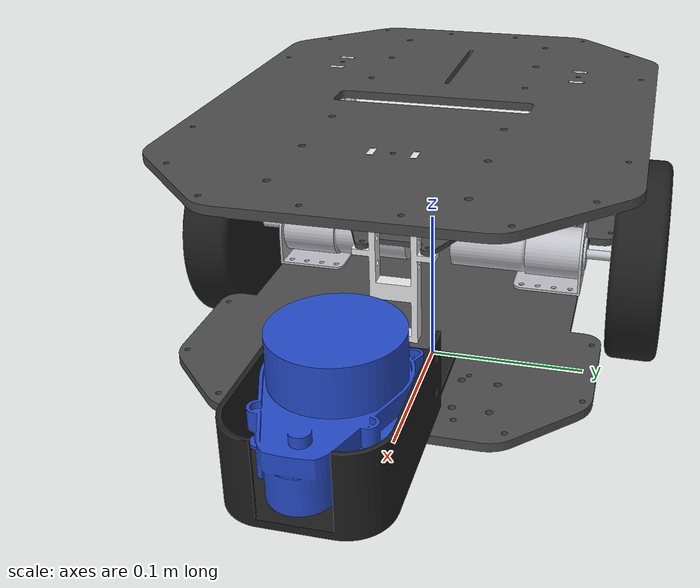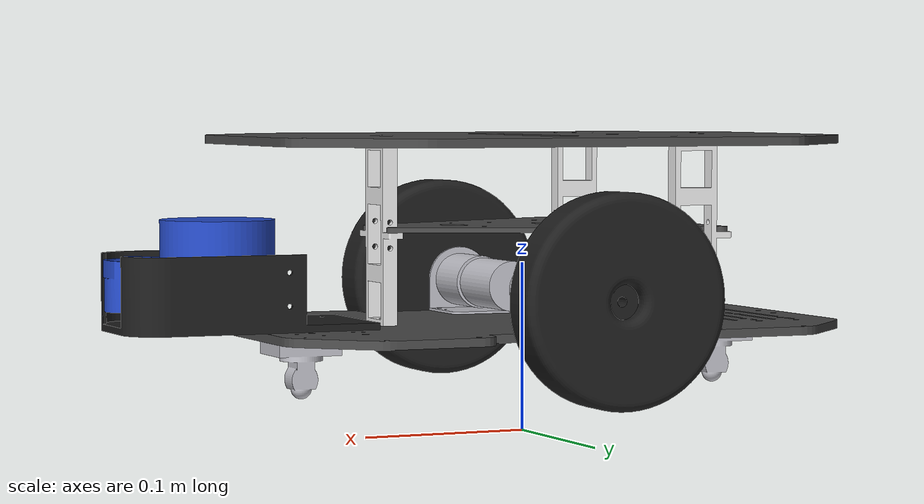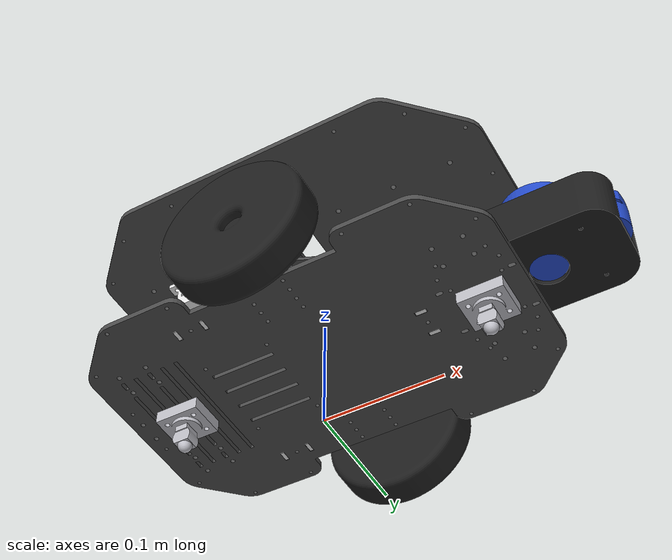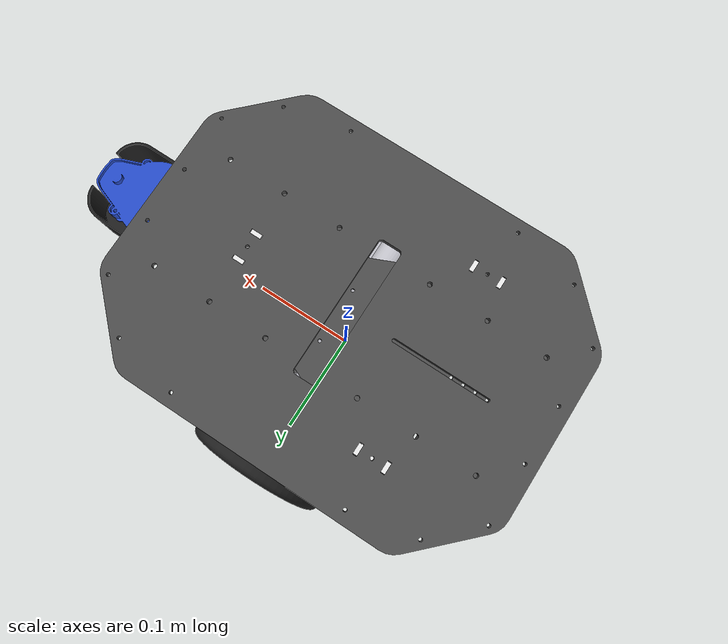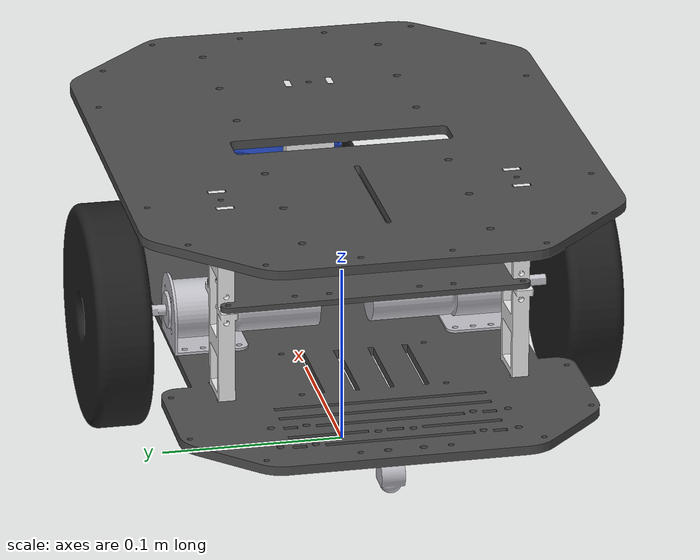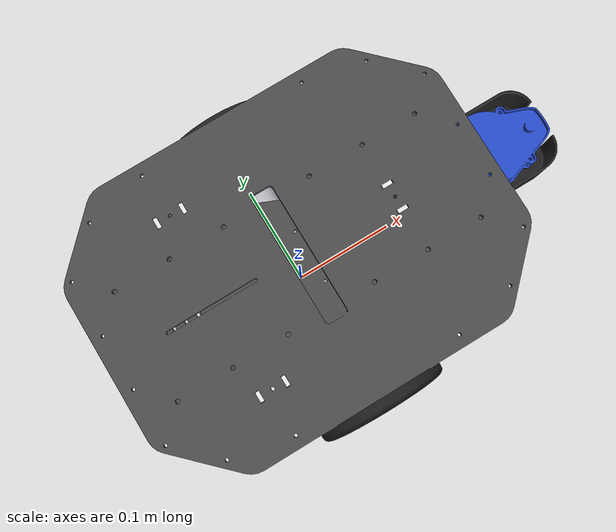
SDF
<sdf version='1.7'>
  <model name='lapras_urdf'>
    <link name='base_link'>
      <inertial>
        <pose>0.033155 2e-06 0.113248 0 -0 0</pose>
        <mass>0.1</mass>
        <inertia>
          <ixx>0.0543009</ixx>
          <ixy>5.06848e-06</ixy>
          <ixz>0.00532297</ixz>
          <iyy>0.136365</iyy>
          <iyz>2.43154e-07</iyz>
          <izz>0.148266</izz>
        </inertia>
      </inertial>
      <collision name='base_link_collision'>
        <pose>0 0 0 0 -0 0</pose>
        <geometry>
          <mesh>
            <scale>0.001 0.001 0.001</scale>
            <uri>model://models/lapras/meshes/base_link.stl</uri>
          </mesh>
        </geometry>
        <surface>
          <contact>
            <ode/>
          </contact>
          <friction>
            <ode>
              <mu>0.2</mu>
              <mu2>0.2</mu2>
            </ode>
          </friction>
        </surface>
      </collision>
      <collision name='base_link_fixed_joint_lump__MotorBracket_v1_1_collision_1'>
        <pose>0 0 0 0 -0 0</pose>
        <geometry>
          <mesh>
            <scale>0.001 0.001 0.001</scale>
            <uri>model://models/lapras/meshes/MotorBracket_v1_1.stl</uri>
          </mesh>
        </geometry>
        <surface>
          <contact>
            <ode/>
          </contact>
          <friction>
            <ode>
              <mu>0.2</mu>
              <mu2>0.2</mu2>
            </ode>
          </friction>
        </surface>
      </collision>
      <collision name='base_link_fixed_joint_lump__Motor_v1__1__1_collision_2'>
        <pose>0 0 0 0 -0 0</pose>
        <geometry>
          <mesh>
            <scale>0.001 0.001 0.001</scale>
            <uri>model://models/lapras/meshes/Motor_v1__1__1.stl</uri>
          </mesh>
        </geometry>
        <surface>
          <contact>
            <ode/>
          </contact>
          <friction>
            <ode>
              <mu>0.2</mu>
              <mu2>0.2</mu2>
            </ode>
          </friction>
        </surface>
      </collision>
      <collision name='base_link_fixed_joint_lump__MotorBracket_v1__1__1_collision_3'>
        <pose>0 0 0 0 -0 0</pose>
        <geometry>
          <mesh>
            <scale>0.001 0.001 0.001</scale>
            <uri>model://models/lapras/meshes/MotorBracket_v1__1__1.stl</uri>
          </mesh>
        </geometry>
        <surface>
          <contact>
            <ode/>
          </contact>
          <friction>
            <ode>
              <mu>0.2</mu>
              <mu2>0.2</mu2>
            </ode>
          </friction>
        </surface>
      </collision>
      <collision name='base_link_fixed_joint_lump__Motor_v1_1_collision_4'>
        <pose>-0 0 0 0 -0 0</pose>
        <geometry>
          <mesh>
            <scale>0.001 0.001 0.001</scale>
            <uri>model://models/lapras/meshes/Motor_v1_1.stl</uri>
          </mesh>
        </geometry>
        <surface>
          <contact>
            <ode/>
          </contact>
          <friction>
            <ode>
              <mu>0.2</mu>
              <mu2>0.2</mu2>
            </ode>
          </friction>
        </surface>
      </collision>
      <collision name='base_link_fixed_joint_lump__ydlidar_base_v5_1_collision_5'>
        <pose>0 0 0 0 -0 0</pose>
        <geometry>
          <mesh>
            <scale>0.001 0.001 0.001</scale>
            <uri>model://models/lapras/meshes/ydlidar_base_v5_1.stl</uri>
          </mesh>
        </geometry>
        <surface>
          <contact>
            <ode/>
          </contact>
          <friction>
            <ode>
              <mu>0.2</mu>
              <mu2>0.2</mu2>
            </ode>
          </friction>
        </surface>
      </collision>
      <collision name='base_link_fixed_joint_lump__ydlidar_x4_v1_1_collision_6'>
        <pose>-0 0 0 0 -0 0</pose>
        <geometry>
          <mesh>
            <scale>0.001 0.001 0.001</scale>
            <uri>model://models/lapras/meshes/ydlidar_x4_v1_1.stl</uri>
          </mesh>
        </geometry>
        <surface>
          <contact>
            <ode/>
          </contact>
          <friction>
            <ode>
              <mu>0.2</mu>
              <mu2>0.2</mu2>
            </ode>
          </friction>
        </surface>
      </collision>
      <collision name='base_link_fixed_joint_lump__Barbell_v4__2__1_collision_7'>
        <pose>0 0 0 0 -0 0</pose>
        <geometry>
          <mesh>
            <scale>0.001 0.001 0.001</scale>
            <uri>model://models/lapras/meshes/Barbell_v4__2__1.stl</uri>
          </mesh>
        </geometry>
        <surface>
          <contact>
            <ode/>
          </contact>
          <friction>
            <ode>
              <mu>0.2</mu>
              <mu2>0.2</mu2>
            </ode>
          </friction>
        </surface>
      </collision>
      <collision name='base_link_fixed_joint_lump__Barbell_v4__1__1_collision_8'>
        <pose>0 0 0 0 -0 0</pose>
        <geometry>
          <mesh>
            <scale>0.001 0.001 0.001</scale>
            <uri>model://models/lapras/meshes/Barbell_v4__1__1.stl</uri>
          </mesh>
        </geometry>
        <surface>
          <contact>
            <ode/>
          </contact>
          <friction>
            <ode>
              <mu>0.2</mu>
              <mu2>0.2</mu2>
            </ode>
          </friction>
        </surface>
      </collision>
      <collision name='base_link_fixed_joint_lump__Barbell_v4_1_collision_9'>
        <pose>0 0 0 0 -0 0</pose>
        <geometry>
          <mesh>
            <scale>0.001 0.001 0.001</scale>
            <uri>model://models/lapras/meshes/Barbell_v4_1.stl</uri>
          </mesh>
        </geometry>
        <surface>
          <contact>
            <ode/>
          </contact>
          <friction>
            <ode>
              <mu>0.2</mu>
              <mu2>0.2</mu2>
            </ode>
          </friction>
        </surface>
      </collision>
      <collision name='base_link_fixed_joint_lump__mid_base_v8_1_collision_10'>
        <pose>0 0 0 0 -0 0</pose>
        <geometry>
          <mesh>
            <scale>0.001 0.001 0.001</scale>
            <uri>model://models/lapras/meshes/mid_base_v8_1.stl</uri>
          </mesh>
        </geometry>
        <surface>
          <contact>
            <ode/>
          </contact>
          <friction>
            <ode>
              <mu>0.2</mu>
              <mu2>0.2</mu2>
            </ode>
          </friction>
        </surface>
      </collision>
      <collision name='base_link_fixed_joint_lump__topper_base_v7_1_collision_11'>
        <pose>0 0 0 0 -0 0</pose>
        <geometry>
          <mesh>
            <scale>0.001 0.001 0.001</scale>
            <uri>model://models/lapras/meshes/topper_base_v7_1.stl</uri>
          </mesh>
        </geometry>
        <surface>
          <contact>
            <ode/>
          </contact>
          <friction>
            <ode>
              <mu>0.2</mu>
              <mu2>0.2</mu2>
            </ode>
          </friction>
        </surface>
      </collision>
      <collision name='base_link_fixed_joint_lump__caster_v2_1_collision_12'>
        <pose>0 0 0 0 -0 0</pose>
        <geometry>
          <mesh>
            <scale>0.001 0.001 0.001</scale>
            <uri>model://models/lapras/meshes/caster_urdf_v4_1.stl</uri>
          </mesh>
        </geometry>
        <surface>
          <contact>
            <ode/>
          </contact>
          <friction>
            <ode>
              <mu>0.0001</mu>
              <mu2>0.0001</mu2>
            </ode>
          </friction>
        </surface>
      </collision>
      <collision name='base_link_fixed_joint_lump__caster_v2__2__1_collision_13'>
        <pose>0 0 0 0 -0 0</pose>
        <geometry>
          <mesh>
            <scale>0.001 0.001 0.001</scale>
            <uri>model://models/lapras/meshes/caster_urdf_v4__1__1.stl</uri>
          </mesh>
        </geometry>
        <surface>
          <contact>
            <ode/>
          </contact>
          <friction>
            <ode>
              <mu>0.0001</mu>
              <mu2>0.0001</mu2>
            </ode>
          </friction>
        </surface>
      </collision>
      <visual name='base_link_visual'>
        <pose>0 0 0 0 -0 0</pose>
        <geometry>
          <mesh>
            <scale>0.001 0.001 0.001</scale>
            <uri>lapras/meshes/base_link.stl</uri>
          </mesh>
        </geometry>
        <material>
          <script>
            <name>Gazebo/DarkGrey</name>
            <uri>file://media/materials/scripts/gazebo.material</uri>
          </script>
        </material>
      </visual>
      <visual name='base_link_fixed_joint_lump__MotorBracket_v1_1_visual_1'>
        <pose>0 0 0 0 -0 0</pose>
        <geometry>
          <mesh>
            <scale>0.001 0.001 0.001</scale>
            <uri>model://models/lapras/meshes/MotorBracket_v1_1.stl</uri>
          </mesh>
        </geometry>
        <material>
          <script>
            <name>Gazebo/Silver</name>
            <uri>file://media/materials/scripts/gazebo.material</uri>
          </script>
        </material>
      </visual>
      <visual name='base_link_fixed_joint_lump__Motor_v1__1__1_visual_2'>
        <pose>0 0 0 0 -0 0</pose>
        <geometry>
          <mesh>
            <scale>0.001 0.001 0.001</scale>
            <uri>model://models/lapras/meshes/Motor_v1__1__1.stl</uri>
          </mesh>
        </geometry>
        <material>
          <script>
            <name>Gazebo/Silver</name>
            <uri>file://media/materials/scripts/gazebo.material</uri>
          </script>
        </material>
      </visual>
      <visual name='base_link_fixed_joint_lump__MotorBracket_v1__1__1_visual_3'>
        <pose>0 0 0 0 -0 0</pose>
        <geometry>
          <mesh>
            <scale>0.001 0.001 0.001</scale>
            <uri>model://models/lapras/meshes/MotorBracket_v1__1__1.stl</uri>
          </mesh>
        </geometry>
        <material>
          <script>
            <name>Gazebo/Silver</name>
            <uri>file://media/materials/scripts/gazebo.material</uri>
          </script>
        </material>
      </visual>
      <visual name='base_link_fixed_joint_lump__Motor_v1_1_visual_4'>
        <pose>-0 0 0 0 -0 0</pose>
        <geometry>
          <mesh>
            <scale>0.001 0.001 0.001</scale>
            <uri>model://models/lapras/meshes/Motor_v1_1.stl</uri>
          </mesh>
        </geometry>
        <material>
          <script>
            <name>Gazebo/Silver</name>
            <uri>file://media/materials/scripts/gazebo.material</uri>
          </script>
        </material>
      </visual>
      <visual name='base_link_fixed_joint_lump__ydlidar_base_v5_1_visual_5'>
        <pose>0 0 0 0 -0 0</pose>
        <geometry>
          <mesh>
            <scale>0.001 0.001 0.001</scale>
            <uri>model://models/lapras/meshes/ydlidar_base_v5_1.stl</uri>
          </mesh>
        </geometry>
        <material>
          <script>
            <name>Gazebo/Black</name>
            <uri>file://media/materials/scripts/gazebo.material</uri>
          </script>
        </material>
      </visual>

      <sensor name="laser" type="ray">
	   <pose> 0.19 0.0 0.12 0.0 0.0 0.0</pose>
           <ray>
             <scan>
               <horizontal>
                 <resolution>0.5</resolution>
                 <min_angle>-2.3038</min_angle>
                 <max_angle>2.3038</max_angle>
               </horizontal>
             </scan>
             <range>
               <min>0.08</min>
               <max>8</max>
               <resolution>0.05</resolution>
             </range>
           </ray>
           <always_on>1</always_on>
           <update_rate>10</update_rate>
           <visualize>false</visualize>

           <plugin name='laser' filename='libgazebo_ros_ray_sensor.so'>
             <ros>
               <namespace>/</namespace>
               <remapping>~/out:=/scan/raw</remapping>
             </ros>
             <output_type>sensor_msgs/LaserScan</output_type>
             <frame_name>laser_frame</frame_name>
           </plugin>
	 </sensor>

      <visual name='base_link_fixed_joint_lump__ydlidar_x4_v1_1_visual_6'>
        <pose>-0 0 0 0 -0 0</pose>
        <geometry>
          <mesh>
            <scale>0.001 0.001 0.001</scale>
            <uri>model://models/lapras/meshes/ydlidar_x4_v1_1.stl</uri>
          </mesh>
        </geometry>
        <material>
          <script>
            <name>Gazebo/Blue</name>
            <uri>file://media/materials/scripts/gazebo.material</uri>
          </script>
        </material>
      </visual>

      <sensor name="lapras_gps" type="gps">
      <always_on>true</always_on>
      <update_rate>10.0</update_rate>
      <gps>
        <position_sensing>
          <horizontal>
            <noise type="gaussian">
              <mean>0.0</mean>
              <stddev>1e-2</stddev>
            </noise>
          </horizontal>
          <vertical>
            <noise type="gaussian">
              <mean>0.0</mean>
              <stddev>1</stddev>
            </noise>
          </vertical>
        </position_sensing>
      </gps>
      <plugin name="mobile_robot_gps" filename="libgazebo_ros_gps_sensor.so">
        <ros>
          <remapping>~/out:=gps/fix</remapping>
        </ros>
      </plugin>

    </sensor>

       <sensor name="lapras_imu" type="imu">
      <always_on>true</always_on>
      <update_rate>100</update_rate>
      <visualize>true</visualize>
      <imu>
        <orientation>
          <x>
            <noise type="gaussian">
              <mean>0.0</mean>
              <stddev>2e-3</stddev>
            </noise>
          </x>
          <y>
            <noise type="gaussian">
              <mean>0.0</mean>
              <stddev>2e-3</stddev>
            </noise>
          </y>
          <z>
            <noise type="gaussian">
              <mean>0.0</mean>
              <stddev>2e-3</stddev>
            </noise>
          </z>
        </orientation>
        <angular_velocity>
          <x>
            <noise type="gaussian">
              <mean>0.0</mean>
              <stddev>2e-4</stddev>
            </noise>
          </x>
          <y>
            <noise type="gaussian">
              <mean>0.0</mean>
              <stddev>2e-4</stddev>
            </noise>
          </y>
          <z>
            <noise type="gaussian">
              <mean>0.0</mean>
              <stddev>2e-4</stddev>
            </noise>
          </z>
        </angular_velocity>
        <linear_acceleration>
          <x>
            <noise type="gaussian">
              <mean>0.0</mean>
              <stddev>1.7e-2</stddev>
            </noise>
          </x>
          <y>
            <noise type="gaussian">
              <mean>0.0</mean>
              <stddev>1.7e-2</stddev>
            </noise>
          </y>
          <z>
            <noise type="gaussian">
              <mean>0.0</mean>
              <stddev>1.7e-2</stddev>
            </noise>
          </z>
        </linear_acceleration>
      </imu>
      <plugin name="lapras_mobile_robot_imu" filename="libgazebo_ros_imu_sensor.so">
        <initial_orientation_as_reference>false</initial_orientation_as_reference>
        <frame_name>imu_link</frame_name>
        <ros>
          <namespace>/imu</namespace>
          <remapping>~/out:=/imu/data</remapping>
        </ros>
      </plugin>
    </sensor>

      <visual name='base_link_fixed_joint_lump__Barbell_v4__2__1_visual_7'>
        <pose>0 0 0 0 -0 0</pose>
        <geometry>
          <mesh>
            <scale>0.001 0.001 0.001</scale>
            <uri>model://models/lapras/meshes/Barbell_v4__2__1.stl</uri>
          </mesh>
        </geometry>
        <material>
          <script>
            <name>Gazebo/White</name>
            <uri>file://media/materials/scripts/gazebo.material</uri>
          </script>
        </material>
      </visual>
      <visual name='base_link_fixed_joint_lump__Barbell_v4__1__1_visual_8'>
        <pose>0 0 0 0 -0 0</pose>
        <geometry>
          <mesh>
            <scale>0.001 0.001 0.001</scale>
            <uri>model://models/lapras/meshes/Barbell_v4__1__1.stl</uri>
          </mesh>
        </geometry>
        <material>
          <script>
            <name>Gazebo/White</name>
            <uri>file://media/materials/scripts/gazebo.material</uri>
          </script>
        </material>
      </visual>
      <visual name='base_link_fixed_joint_lump__Barbell_v4_1_visual_9'>
        <pose>0 0 0 0 -0 0</pose>
        <geometry>
          <mesh>
            <scale>0.001 0.001 0.001</scale>
            <uri>model://models/lapras/meshes/Barbell_v4_1.stl</uri>
          </mesh>
        </geometry>
        <material>
          <script>
            <name>Gazebo/White</name>
            <uri>file://media/materials/scripts/gazebo.material</uri>
          </script>
        </material>
      </visual>
      <visual name='base_link_fixed_joint_lump__mid_base_v8_1_visual_10'>
        <pose>0 0 0 0 -0 0</pose>
        <geometry>
          <mesh>
            <scale>0.001 0.001 0.001</scale>
            <uri>model://models/lapras/meshes/mid_base_v8_1.stl</uri>
          </mesh>
        </geometry>
        <material>
          <script>
            <name>Gazebo/DarkGrey</name>
            <uri>file://media/materials/scripts/gazebo.material</uri>
          </script>
        </material>
      </visual>
      <visual name='base_link_fixed_joint_lump__topper_base_v7_1_visual_11'>
        <pose>0 0 0 0 -0 0</pose>
        <geometry>
          <mesh>
            <scale>0.001 0.001 0.001</scale>
            <uri>model://models/lapras/meshes/topper_base_v7_1.stl</uri>
          </mesh>
        </geometry>
        <material>
          <script>
            <name>Gazebo/DarkGrey</name>
            <uri>file://media/materials/scripts/gazebo.material</uri>
          </script>
        </material>
      </visual>
      <visual name='base_link_fixed_joint_lump__caster_v2_1_visual_12'>
        <pose>0 0 0 0 -0 0</pose>
        <geometry>
          <mesh>
            <scale>0.001 0.001 0.001</scale>
            <uri>model://models/lapras/meshes/caster_urdf_v4_1.stl</uri>
          </mesh>
        </geometry>
        <material>
          <script>
            <name>Gazebo/Silver</name>
            <uri>file://media/materials/scripts/gazebo.material</uri>
          </script>
        </material>
      </visual>
      <visual name='base_link_fixed_joint_lump__caster_v2__2__1_visual_13'>
        <pose>0 0 0 0 -0 0</pose>
        <geometry>
          <mesh>
            <scale>0.001 0.001 0.001</scale>
            <uri>model://models/lapras/meshes/caster_urdf_v4__1__1.stl</uri>
          </mesh>
        </geometry>
        <material>
          <script>
            <name>Gazebo/Silver</name>
            <uri>file://media/materials/scripts/gazebo.material</uri>
          </script>
        </material>
      </visual>
      <gravity>1</gravity>
      <self_collide>1</self_collide>
    </link>

    <joint name='left_wheel_joint' type='revolute'>
      <pose relative_to='base_link'>0 0.113869 0.085029 0 -0 0</pose>
      <parent>base_link</parent>
      <child>left_wheel_1</child>
      <axis>
        <xyz>0 1 0</xyz>
        <limit>
          <lower>-1e+16</lower>
          <upper>1e+16</upper>
        </limit>
        <dynamics>
          <spring_reference>0</spring_reference>
          <spring_stiffness>0</spring_stiffness>
        </dynamics>
      </axis>
    </joint>
    <link name='left_wheel_1'>
      <pose relative_to='left_wheel_joint'>0 0 0 0 -0 0</pose>
      <inertial>
        <pose>-0 0.015141 0 0 -0 0</pose>
        <mass>0.5</mass>
        <inertia>
          <ixx>0.002744</ixx>
          <ixy>0</ixy>
          <ixz>0</ixz>
          <iyy>0.005075</iyy>
          <iyz>0</iyz>
          <izz>0.002744</izz>
        </inertia>
      </inertial>
      <collision name='left_wheel_1_collision'>
        <pose>0 -0.113869 -0.085029 0 -0 0</pose>
        <geometry>
          <mesh>
            <scale>0.001 0.001 0.001</scale>
            <uri>model://models/lapras/meshes/left_wheel_1.stl</uri>
          </mesh>
        </geometry>
        <surface>
          <contact>
            <ode/>
          </contact>
          <friction>
            <ode>
              <mu>0.2</mu>
              <mu2>0.2</mu2>
            </ode>
          </friction>
        </surface>
      </collision>
      <visual name='left_wheel_1_visual'>
        <pose>0 -0.113869 -0.085029 0 -0 0</pose>
        <geometry>
          <mesh>
            <scale>0.001 0.001 0.001</scale>
            <uri>model://models/lapras/meshes/left_wheel_1.stl</uri>
          </mesh>
        </geometry>
        <material>
          <script>
            <name>Gazebo/Black</name>
            <uri>file://media/materials/scripts/gazebo.material</uri>
          </script>
        </material>
      </visual>
      <self_collide>1</self_collide>
    </link>
    <joint name='right_wheel_joint' type='revolute'>
      <pose relative_to='base_link'>-0 -0.113869 0.085029 0 -0 0</pose>
      <parent>base_link</parent>
      <child>right_wheel_1</child>
      <axis>
        <xyz>0 1 0</xyz>
        <limit>
          <lower>-1e+16</lower>
          <upper>1e+16</upper>
        </limit>
        <dynamics>
          <spring_reference>0</spring_reference>
          <spring_stiffness>0</spring_stiffness>
        </dynamics>
      </axis>
    </joint>
    <link name='right_wheel_1'>
      <pose relative_to='right_wheel_joint'>0 0 0 0 -0 0</pose>
      <inertial>
        <pose>0 -0.015141 0 0 -0 0</pose>
        <mass>0.5</mass>
        <inertia>
          <ixx>0.0002744</ixx>
          <ixy>0</ixy>
          <ixz>0</ixz>
          <iyy>0.0050075</iyy>
          <iyz>0</iyz>
          <izz>0.0020744</izz>
        </inertia>
      </inertial>
      <collision name='right_wheel_1_collision'>
        <pose>0 0.113869 -0.085029 0 -0 0</pose>
        <geometry>
          <mesh>
            <scale>0.001 0.001 0.001</scale>
            <uri>model://models/lapras/meshes/right_wheel_1.stl</uri>
          </mesh>
        </geometry>
        <surface>
          <contact>
            <ode/>
          </contact>
          <friction>
            <ode>
              <mu>0.2</mu>
              <mu2>0.2</mu2>
            </ode>
          </friction>
        </surface>
      </collision>
      <visual name='right_wheel_1_visual'>
        <pose>0 0.113869 -0.085029 0 -0 0</pose>
        <geometry>
          <mesh>
            <scale>0.001 0.001 0.001</scale>
            <uri>model://models/lapras/meshes/right_wheel_1.stl</uri>
          </mesh>
        </geometry>
        <material>
          <script>
            <name>Gazebo/Black</name>
            <uri>file://media/materials/scripts/gazebo.material</uri>
          </script>
        </material>
      </visual>
      <self_collide>1</self_collide>
    </link>
    <static>0</static>

    <plugin name="basic_mobile_bot_diff_drive" filename="libgazebo_ros_diff_drive.so">

    <update_rate>30</update_rate>

    <!-- wheels -->
    <left_joint>left_wheel_joint</left_joint>
    <right_joint>right_wheel_joint</right_joint>

    <!-- kinematics -->
    <wheel_separation>0.228</wheel_separation>
    <wheel_diameter>0.1219</wheel_diameter>

    <!-- limits -->
    <max_wheel_torque>1000.0</max_wheel_torque>
    <max_wheel_acceleration>40.0</max_wheel_acceleration>

    <!-- Receive velocity commands on this ROS topic -->
    <command_topic>cmd_vel</command_topic>

    <!-- output -->
    <!-- When false, publish no wheel odometry data to a ROS topic -->
    <publish_odom>true</publish_odom>

    <!-- When true, publish coordinate transform from odom to base_footprint -->
    <!-- I usually use the robot_localization package to publish this transform -->
    <publish_odom_tf>false</publish_odom_tf>

    <!-- When true, publish coordinate transform from base_link to the wheels -->
    <!-- The robot_state_publisher package is often used to publish this transform -->
    <publish_wheel_tf>false</publish_wheel_tf>

    <odometry_topic>odom</odometry_topic>
    <odometry_frame>odom_raw</odometry_frame>
    <robot_base_frame>base_link_raw</robot_base_frame>

    <!-- Odometry source, 0 for ENCODER, 1 for WORLD, defaults to WORLD -->
    <odometry_source>1</odometry_source>
    <ros>
          <remapping>/odom:=/odom/raw</remapping>
    </ros>
    <!-- Change the ROS topic we will publish the odometry data to -->

  </plugin>

  </model>
</sdf>
